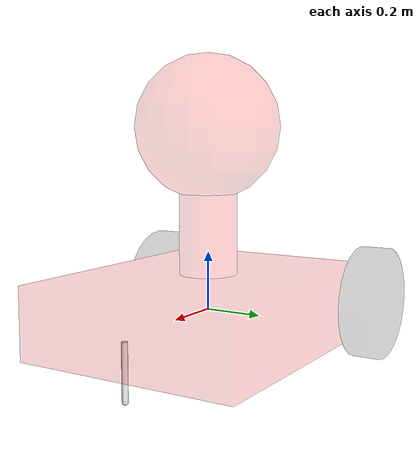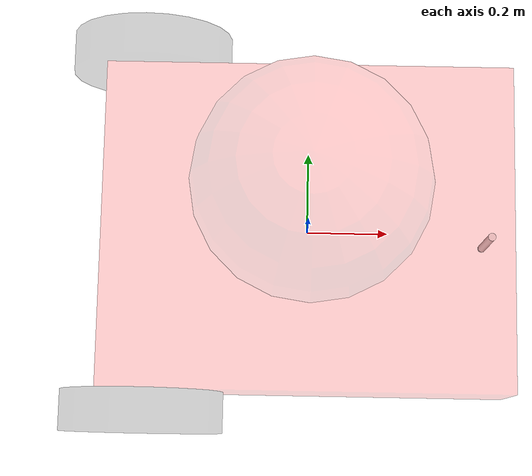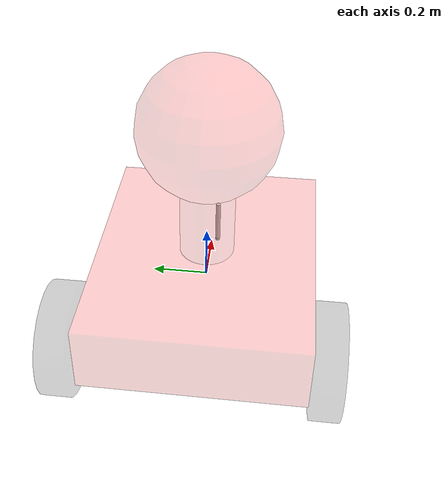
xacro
<?xml version="1.0"?>
<robot xmlns:xacro="http://www.ros.org/wiki/xacro" name="ddrobot">

    <xacro:include filename="$(find machine_vision_part2)/urdf/ddrobot/xacro/chasis.xacro"/>
    <xacro:include filename="$(find machine_vision_part2)/urdf/ddrobot/xacro/wheels.xacro"/>
    <xacro:include filename="$(find machine_vision_part2)/urdf/ddrobot/xacro/gazebo.xacro"/>
    <xacro:include filename="$(find machine_vision_part2)/urdf/ddrobot/xacro/materials.xacro"/>

    <xacro:property name="passive_wheel_holder_radius" value="0.01" />
    <xacro:property name="passive_wheel_holder_length" value="0.18" />
    <xacro:property name="passive_wheel_holder_z_offset" value="-0.1" />

    <!-- Robot Base Footprint -->
    <link name="base_footprint1"></link>

    <!-- Robot Chasis -->
    <xacro:chasis />

    <!-- Robot Wheels -->

    <joint name="base_to_passive_wheel_holder1" type="fixed">
        <origin xyz="0.065 0 0" rpy="0 0 0" />
        <parent link="chasis"/>
        <child link="passive_wheel_holder1"/>
    </joint>

    <link name="passive_wheel_holder1">
        <visual>
            <origin xyz="0.4 0 ${passive_wheel_holder_z_offset}" />
            <geometry>
                <cylinder radius="${passive_wheel_holder_radius}" length="${passive_wheel_holder_length}" />
            </geometry>
            <material name="white"></material>
        </visual>
        <collision>
            <origin xyz="0.4 0 ${passive_wheel_holder_z_offset}" />
            <geometry>
                <cylinder radius="${passive_wheel_holder_radius}" length="${passive_wheel_holder_length}" />
            </geometry>
        </collision>
        <inertial>
            <mass value="0.02"/>
            <origin xyz="0.4 0 ${passive_wheel_holder_z_offset}" />
            <inertia ixx="0.00000104" ixy="0.0" ixz="0.0" iyy="0.00000104" iyz="0.0" izz="0.000001"/>
        </inertial>
    </link>

    <!-- Passive Wheel Link and Joint with Passive Wheel Holder Link -->
    <joint name="base_to_passive_wheel1" type="fixed">
        <origin xyz="0.4 0 -0.195" rpy="0 0 0" />
        <parent link="passive_wheel_holder1"/>
        <child link="passive_wheel1"/>
    </joint>

    <link name="passive_wheel1">
        <visual>
            <geometry>
                <sphere radius="${passive_wheel_holder_radius}" />
            </geometry>
            <material name="white"></material>
        </visual>
        <collision>
            <geometry>
                <sphere radius="${passive_wheel_holder_radius}" />
            </geometry>
        </collision>
        <inertial>
            <mass value="0.02"/>
            <inertia ixx="0.0000008" ixy="0.0" ixz="0.0" iyy="0.0000008" iyz="0.0" izz="0.0000008"/>
        </inertial>
    </link>

    <xacro:wheel side="right" position="back" offset_x="${-(chasis_length/2 - 0.1)}" offset_y="${-(chasis_width/2 + 0.05)}" />
    <xacro:wheel side="left" position="back" offset_x="${-(chasis_length/2 - 0.1)}" offset_y="${chasis_width/2 + 0.05}" />
</robot>

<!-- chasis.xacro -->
<robot xmlns:xacro="http://www.ros.org/wiki/xacro">

    <xacro:property name="head_mass" value="0.1" />
    <xacro:property name="head_radius" value="0.25" />
    <xacro:property name="head_inertia_calc" value="${(2/5) * head_mass * (head_radius * head_radius)}" />

    <xacro:property name="head_mount_mass" value="0.1" />
    <xacro:property name="head_mount_radius" value="0.1" />
    <xacro:property name="head_mount_height" value="0.5" />
    <xacro:property name="head_mount_inertia_calc" value="${(1/12) * head_mount_mass * ((3 * (head_mount_radius * head_mount_radius)) + (head_mount_height * head_mount_height))}" />
    <xacro:property name="head_mount_inertia_calc_izz" value="${(1/2) * head_mount_mass * (head_mount_radius * head_mount_radius)}" />

    <xacro:property name="chasis_mass" value="0.2" />
    <xacro:property name="chasis_width" value="0.8" />
    <xacro:property name="chasis_height" value="0.25" />
    <xacro:property name="chasis_length" value="1" />

    <xacro:property name="chasis_inertia_calc_ixx" value="${(1/12) * chasis_mass * ((chasis_height * chasis_height) + (chasis_length * chasis_length))}" />
    <xacro:property name="chasis_inertia_calc_iyy" value="${(1/12) * chasis_mass * ((chasis_width * chasis_width) + (chasis_height * chasis_height))}" />
    <xacro:property name="chasis_inertia_calc_izz" value="${(1/12) * chasis_mass * ((chasis_width * chasis_width) + (chasis_length * chasis_length))}" />

    <xacro:macro name="chasis">

        <!-- Robot Head -->
        <link name="head1">
            <visual>
                <origin xyz="0 0 0" rpy="0.0 0.0 0.0" />
                <geometry>
                    <sphere radius="${head_radius}" />
                </geometry>
                <material name="red" />
            </visual>
            <collision>
                <origin xyz="0 0 0" rpy="0.0 0.0 0.0" />
                <geometry>
                    <sphere radius="${head_radius}" />
                </geometry>
            </collision>
            <inertial>
                <mass value="${chasis_mass}"/>
                <inertia ixx="${head_inertia_calc}" ixy="0.0" ixz="0.0" iyy="${head_inertia_calc}" iyz="0.0" izz="${head_inertia_calc}"/>
            </inertial>
        </link>
        <joint name="joint_head_mount__head" type="fixed">
            <origin xyz="0 0 0.4" rpy="0.0 0.0 0.0" />
            <parent link="head_mount"/>
            <child link="head1"/>
        </joint>

        <!-- Robot Head Mount -->
        <link name="head_mount">
            <visual>
                <origin xyz="0 0 0" rpy="0 0 0"/>
                <geometry>
                    <cylinder radius="${head_mount_radius}" length="${head_mount_height}"/>
                </geometry>
                <material name="red"/>
            </visual>
            <collision>
                <origin xyz="0 0 0" rpy="0 0 0"/>
                <geometry>
                    <cylinder radius="${head_mount_radius}" length="${head_mount_height}"/>
                </geometry>
            </collision>
            <inertial>
                <mass value="${head_mount_mass}"/>
                <inertia ixx="${head_mount_inertia_calc}" ixy="0.0" ixz="0.0" iyy="${head_mount_inertia_calc}" iyz="0.0" izz="${head_mount_inertia_calc_izz}"/>
            </inertial>
        </link>
        <joint name="joint_chasis__head_mount" type="fixed">
            <origin xyz="0 0 0.23" rpy="0.0 0.0 0.0" />
            <parent link="chasis"/>
            <child link="head_mount"/>
        </joint>

        <!-- Main Robot Body  -->
        <link name="chasis">
            <visual>
                <origin xyz="0.0 0.0 0.0" rpy="0.0 0.0 0.0" />
                <geometry>
                    <box size="${chasis_length} ${chasis_width} ${chasis_height}" />
                </geometry>
                <material name="red" />
            </visual>
            <collision>
                <origin xyz="0.0 0.0 0.0" rpy="0.0 0.0 0.0" />
                <geometry>
                    <box size="${chasis_length} ${chasis_width} ${chasis_height}" />
                </geometry>
            </collision>
            <inertial>
                <mass value="${chasis_mass}"/>
                <inertia ixx="${chasis_inertia_calc_ixx}" ixy="0.0" ixz="0.0" iyy="${chasis_inertia_calc_iyy}" iyz="0.0" izz="${chasis_inertia_calc_izz}"/>
            </inertial>
        </link>
        <joint name="joint_base_footprint__chasis" type="fixed">
            <origin xyz="0 0 0" rpy="0 0 0" />
            <parent link="base_footprint1"/>
            <child link="chasis"/>
        </joint>
    </xacro:macro>

</robot>

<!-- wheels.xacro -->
<robot xmlns:xacro="http://www.ros.org/wiki/xacro">

    <xacro:property name="wheel_mass" value="0.015" />
    <xacro:property name="wheel_radius" value="0.2" />
    <xacro:property name="wheel_height" value="0.1" />
    <xacro:property name="wheel_inertia_calc" value="${(1/12) * wheel_mass * ((3 * (wheel_radius * wheel_radius)) + (wheel_height * wheel_height))}" />
    <xacro:property name="wheel_inertia_calc_izz" value="${(1/2) * wheel_mass * (wheel_radius * wheel_radius)}" />

    <xacro:macro name="wheel" params="side position offset_x offset_y">
        <link name="${side}_${position}_wheel">
            <visual>
                <origin xyz="0 0 0" rpy="${pi/2} 0 0"/>
                <geometry>
                    <cylinder radius="${wheel_radius}" length="${wheel_height}"/>
                </geometry>
                <material name="black"/>
            </visual>
            <collision>
                <origin xyz="0 0 0" rpy="${pi/2} 0 0"/>
                <geometry>
                    <sphere radius="${wheel_radius}" />
                </geometry>
            </collision>
            <inertial>
                <mass value="${wheel_mass}"/>
                <inertia ixx="${wheel_inertia_calc}" ixy="0.0" ixz="0.0" iyy="${wheel_inertia_calc}" iyz="0.0" izz="${wheel_inertia_calc_izz}"/>
                <origin xyz="0 0 0" rpy="${pi/2} 0 0"/>

            </inertial>
        </link>
        <joint name="joint_${side}_${position}_wheel" type="continuous">
            <parent link="chasis"/>
            <child link="${side}_${position}_wheel"/>
            <origin xyz="${offset_x} ${offset_y} 0.0" rpy="0.0 0.0 0.0"/>
            <axis xyz="0.0 1 0.0"/>
        </joint>

        <!-- Robot Joints' Transmission -->
    </xacro:macro>
</robot>

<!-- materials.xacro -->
<robot xmlns:xacro="http://www.ros.org/wiki/xacro">

    <material name="black">
        <color rgba="0 0 0 0.1"/>
    </material>

    <material name="red">
        <color rgba="1 0 0 0.1"/>
    </material>

</robot>
